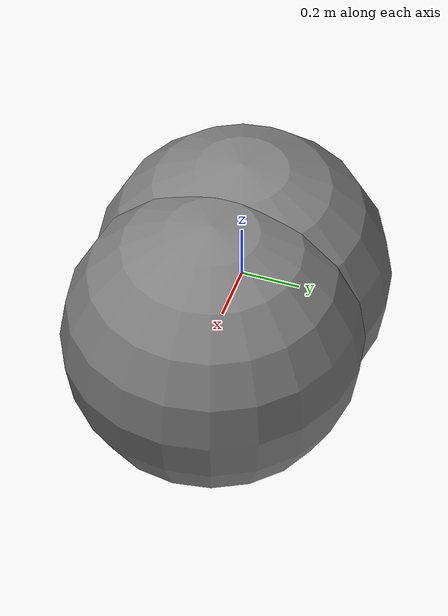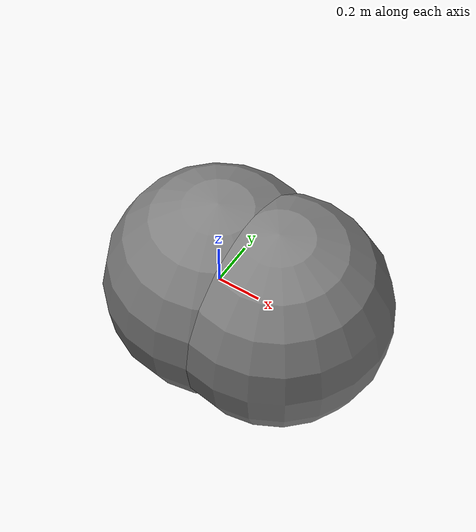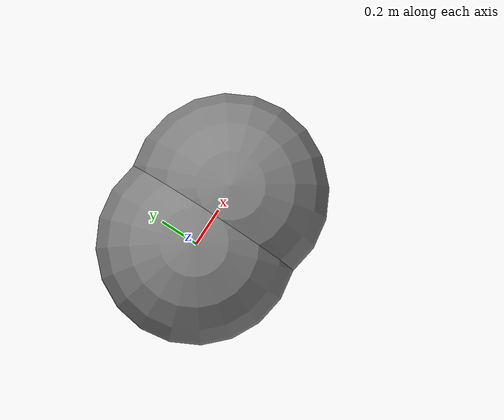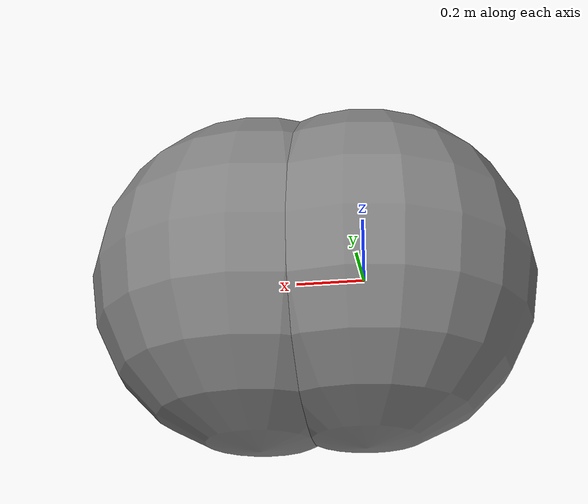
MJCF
<mujoco model="t13">
            <worldbody>
                <body name="b1" pos="0 0 0">
                    <geom name="g1" type="sphere" size="0.5" pos="0 0 0"/>
                </body>
                <body name="b2" pos="0.3 0 0">
                    <geom name="g2" type="sphere" size="0.5" pos="0 0 0"/>
                </body>
            </worldbody>
            <sensor>
                <distance name="d" geom1="g1" geom2="g2" cutoff="0.5"/>
            </sensor>
        </mujoco>
